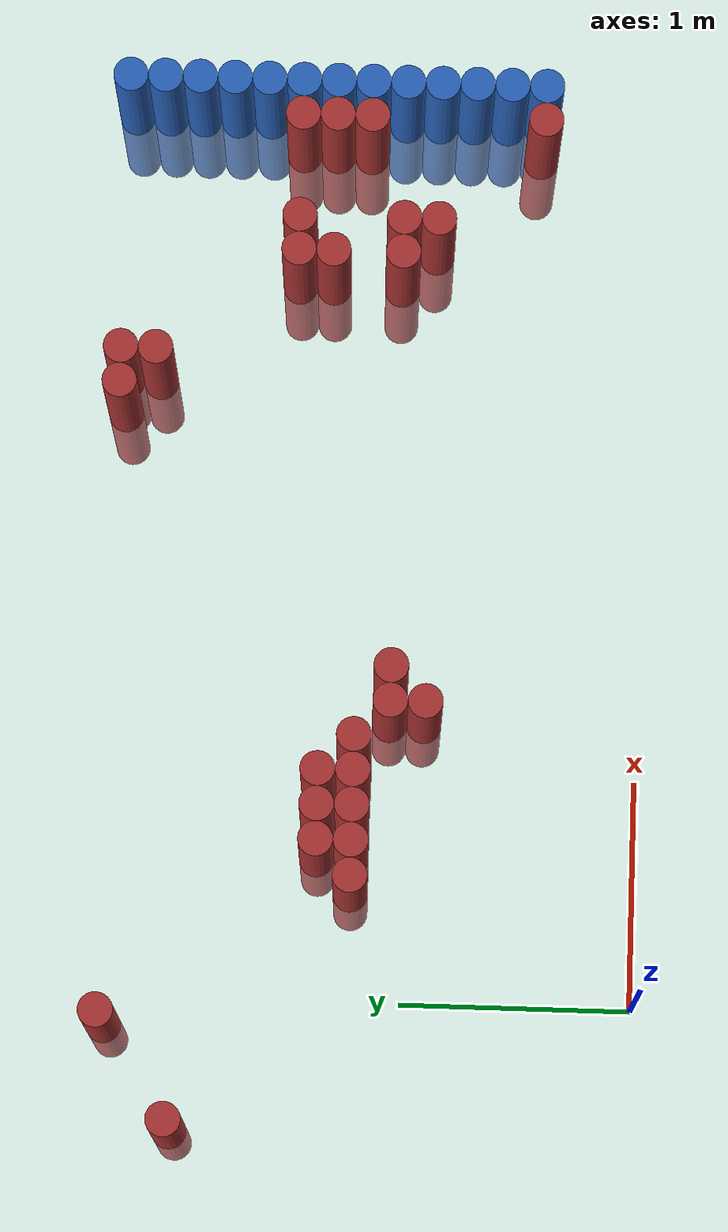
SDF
<sdf version="1.6">
 <world name="default">
  <model name="ground_plane">
   <static>1</static>
   <link name="link">
    <collision name="collision">
     <geometry><plane><normal>0 0 1</normal><size>100 100</size></plane></geometry>
     <surface><friction><ode><mu>100</mu><mu2>50</mu2></ode></friction></surface>
    </collision>
    <visual name="visual">
     <cast_shadows>0</cast_shadows>
     <geometry><plane><normal>0 0 1</normal><size>100 100</size></plane></geometry>
     <material>
      <script><uri>file://media/materials/scripts/gazebo.material</uri><name>Gazebo/Grey</name></script>
     </material>
    </visual>
   </link>
  </model>
  <model name="unit_cylinder_122">
   <static>1</static>
   <pose>3.925000 0.625000 0.000000 0.000000 0.000000 0.000000</pose>
   <link name="link">
    <inertial>
     <mass>1</mass>
     <inertia><ixx>0.145833</ixx><ixy>0</ixy><ixz>0</ixz><iyy>0.145833</iyy><iyz>0</iyz><izz>0.125</izz></inertia>
    </inertial>
    <collision name="collision">
     <geometry><cylinder><radius>0.075000</radius><length>1.5</length></cylinder></geometry>
    </collision>
    <visual name="visual">
     <geometry><cylinder><radius>0.075000</radius><length>1.5</length></cylinder></geometry>
     <material>
      <ambient>0.152000 0.379000 0.720000 1</ambient>
      <diffuse>0.152000 0.379000 0.720000 1</diffuse>
     </material>
     <material>
      <script><name>Gazebo/Grey</name><uri>file://media/materials/scripts/gazebo.material</uri></script>
     </material>
    </visual>
   </link>
  </model>
  <model name="unit_cylinder_124">
   <static>1</static>
   <pose>3.925000 0.775000 0.000000 0.000000 0.000000 0.000000</pose>
   <link name="link">
    <inertial>
     <mass>1</mass>
     <inertia><ixx>0.145833</ixx><ixy>0</ixy><ixz>0</ixz><iyy>0.145833</iyy><iyz>0</iyz><izz>0.125</izz></inertia>
    </inertial>
    <collision name="collision">
     <geometry><cylinder><radius>0.075000</radius><length>1.5</length></cylinder></geometry>
    </collision>
    <visual name="visual">
     <geometry><cylinder><radius>0.075000</radius><length>1.5</length></cylinder></geometry>
     <material>
      <ambient>0.152000 0.379000 0.720000 1</ambient>
      <diffuse>0.152000 0.379000 0.720000 1</diffuse>
     </material>
     <material>
      <script><name>Gazebo/Grey</name><uri>file://media/materials/scripts/gazebo.material</uri></script>
     </material>
    </visual>
   </link>
  </model>
  <model name="unit_cylinder_126">
   <static>1</static>
   <pose>3.925000 0.925000 0.000000 0.000000 0.000000 0.000000</pose>
   <link name="link">
    <inertial>
     <mass>1</mass>
     <inertia><ixx>0.145833</ixx><ixy>0</ixy><ixz>0</ixz><iyy>0.145833</iyy><iyz>0</iyz><izz>0.125</izz></inertia>
    </inertial>
    <collision name="collision">
     <geometry><cylinder><radius>0.075000</radius><length>1.5</length></cylinder></geometry>
    </collision>
    <visual name="visual">
     <geometry><cylinder><radius>0.075000</radius><length>1.5</length></cylinder></geometry>
     <material>
      <ambient>0.152000 0.379000 0.720000 1</ambient>
      <diffuse>0.152000 0.379000 0.720000 1</diffuse>
     </material>
     <material>
      <script><name>Gazebo/Grey</name><uri>file://media/materials/scripts/gazebo.material</uri></script>
     </material>
    </visual>
   </link>
  </model>
  <model name="unit_cylinder_128">
   <static>1</static>
   <pose>3.925000 1.075000 0.000000 0.000000 0.000000 0.000000</pose>
   <link name="link">
    <inertial>
     <mass>1</mass>
     <inertia><ixx>0.145833</ixx><ixy>0</ixy><ixz>0</ixz><iyy>0.145833</iyy><iyz>0</iyz><izz>0.125</izz></inertia>
    </inertial>
    <collision name="collision">
     <geometry><cylinder><radius>0.075000</radius><length>1.5</length></cylinder></geometry>
    </collision>
    <visual name="visual">
     <geometry><cylinder><radius>0.075000</radius><length>1.5</length></cylinder></geometry>
     <material>
      <ambient>0.152000 0.379000 0.720000 1</ambient>
      <diffuse>0.152000 0.379000 0.720000 1</diffuse>
     </material>
     <material>
      <script><name>Gazebo/Grey</name><uri>file://media/materials/scripts/gazebo.material</uri></script>
     </material>
    </visual>
   </link>
  </model>
  <model name="unit_cylinder_130">
   <static>1</static>
   <pose>3.925000 1.225000 0.000000 0.000000 0.000000 0.000000</pose>
   <link name="link">
    <inertial>
     <mass>1</mass>
     <inertia><ixx>0.145833</ixx><ixy>0</ixy><ixz>0</ixz><iyy>0.145833</iyy><iyz>0</iyz><izz>0.125</izz></inertia>
    </inertial>
    <collision name="collision">
     <geometry><cylinder><radius>0.075000</radius><length>1.5</length></cylinder></geometry>
    </collision>
    <visual name="visual">
     <geometry><cylinder><radius>0.075000</radius><length>1.5</length></cylinder></geometry>
     <material>
      <ambient>0.152000 0.379000 0.720000 1</ambient>
      <diffuse>0.152000 0.379000 0.720000 1</diffuse>
     </material>
     <material>
      <script><name>Gazebo/Grey</name><uri>file://media/materials/scripts/gazebo.material</uri></script>
     </material>
    </visual>
   </link>
  </model>
  <model name="unit_cylinder_132">
   <static>1</static>
   <pose>3.925000 1.375000 0.000000 0.000000 0.000000 0.000000</pose>
   <link name="link">
    <inertial>
     <mass>1</mass>
     <inertia><ixx>0.145833</ixx><ixy>0</ixy><ixz>0</ixz><iyy>0.145833</iyy><iyz>0</iyz><izz>0.125</izz></inertia>
    </inertial>
    <collision name="collision">
     <geometry><cylinder><radius>0.075000</radius><length>1.5</length></cylinder></geometry>
    </collision>
    <visual name="visual">
     <geometry><cylinder><radius>0.075000</radius><length>1.5</length></cylinder></geometry>
     <material>
      <ambient>0.152000 0.379000 0.720000 1</ambient>
      <diffuse>0.152000 0.379000 0.720000 1</diffuse>
     </material>
     <material>
      <script><name>Gazebo/Grey</name><uri>file://media/materials/scripts/gazebo.material</uri></script>
     </material>
    </visual>
   </link>
  </model>
  <model name="unit_cylinder_134">
   <static>1</static>
   <pose>3.925000 1.525000 0.000000 0.000000 0.000000 0.000000</pose>
   <link name="link">
    <inertial>
     <mass>1</mass>
     <inertia><ixx>0.145833</ixx><ixy>0</ixy><ixz>0</ixz><iyy>0.145833</iyy><iyz>0</iyz><izz>0.125</izz></inertia>
    </inertial>
    <collision name="collision">
     <geometry><cylinder><radius>0.075000</radius><length>1.5</length></cylinder></geometry>
    </collision>
    <visual name="visual">
     <geometry><cylinder><radius>0.075000</radius><length>1.5</length></cylinder></geometry>
     <material>
      <ambient>0.152000 0.379000 0.720000 1</ambient>
      <diffuse>0.152000 0.379000 0.720000 1</diffuse>
     </material>
     <material>
      <script><name>Gazebo/Grey</name><uri>file://media/materials/scripts/gazebo.material</uri></script>
     </material>
    </visual>
   </link>
  </model>
  <model name="unit_cylinder_136">
   <static>1</static>
   <pose>3.925000 1.675000 0.000000 0.000000 0.000000 0.000000</pose>
   <link name="link">
    <inertial>
     <mass>1</mass>
     <inertia><ixx>0.145833</ixx><ixy>0</ixy><ixz>0</ixz><iyy>0.145833</iyy><iyz>0</iyz><izz>0.125</izz></inertia>
    </inertial>
    <collision name="collision">
     <geometry><cylinder><radius>0.075000</radius><length>1.5</length></cylinder></geometry>
    </collision>
    <visual name="visual">
     <geometry><cylinder><radius>0.075000</radius><length>1.5</length></cylinder></geometry>
     <material>
      <ambient>0.152000 0.379000 0.720000 1</ambient>
      <diffuse>0.152000 0.379000 0.720000 1</diffuse>
     </material>
     <material>
      <script><name>Gazebo/Grey</name><uri>file://media/materials/scripts/gazebo.material</uri></script>
     </material>
    </visual>
   </link>
  </model>
  <model name="unit_cylinder_138">
   <static>1</static>
   <pose>3.925000 1.825000 0.000000 0.000000 0.000000 0.000000</pose>
   <link name="link">
    <inertial>
     <mass>1</mass>
     <inertia><ixx>0.145833</ixx><ixy>0</ixy><ixz>0</ixz><iyy>0.145833</iyy><iyz>0</iyz><izz>0.125</izz></inertia>
    </inertial>
    <collision name="collision">
     <geometry><cylinder><radius>0.075000</radius><length>1.5</length></cylinder></geometry>
    </collision>
    <visual name="visual">
     <geometry><cylinder><radius>0.075000</radius><length>1.5</length></cylinder></geometry>
     <material>
      <ambient>0.152000 0.379000 0.720000 1</ambient>
      <diffuse>0.152000 0.379000 0.720000 1</diffuse>
     </material>
     <material>
      <script><name>Gazebo/Grey</name><uri>file://media/materials/scripts/gazebo.material</uri></script>
     </material>
    </visual>
   </link>
  </model>
  <model name="unit_cylinder_140">
   <static>1</static>
   <pose>3.925000 1.975000 0.000000 0.000000 0.000000 0.000000</pose>
   <link name="link">
    <inertial>
     <mass>1</mass>
     <inertia><ixx>0.145833</ixx><ixy>0</ixy><ixz>0</ixz><iyy>0.145833</iyy><iyz>0</iyz><izz>0.125</izz></inertia>
    </inertial>
    <collision name="collision">
     <geometry><cylinder><radius>0.075000</radius><length>1.5</length></cylinder></geometry>
    </collision>
    <visual name="visual">
     <geometry><cylinder><radius>0.075000</radius><length>1.5</length></cylinder></geometry>
     <material>
      <ambient>0.152000 0.379000 0.720000 1</ambient>
      <diffuse>0.152000 0.379000 0.720000 1</diffuse>
     </material>
     <material>
      <script><name>Gazebo/Grey</name><uri>file://media/materials/scripts/gazebo.material</uri></script>
     </material>
    </visual>
   </link>
  </model>
  <model name="unit_cylinder_142">
   <static>1</static>
   <pose>3.925000 2.125000 0.000000 0.000000 0.000000 0.000000</pose>
   <link name="link">
    <inertial>
     <mass>1</mass>
     <inertia><ixx>0.145833</ixx><ixy>0</ixy><ixz>0</ixz><iyy>0.145833</iyy><iyz>0</iyz><izz>0.125</izz></inertia>
    </inertial>
    <collision name="collision">
     <geometry><cylinder><radius>0.075000</radius><length>1.5</length></cylinder></geometry>
    </collision>
    <visual name="visual">
     <geometry><cylinder><radius>0.075000</radius><length>1.5</length></cylinder></geometry>
     <material>
      <ambient>0.152000 0.379000 0.720000 1</ambient>
      <diffuse>0.152000 0.379000 0.720000 1</diffuse>
     </material>
     <material>
      <script><name>Gazebo/Grey</name><uri>file://media/materials/scripts/gazebo.material</uri></script>
     </material>
    </visual>
   </link>
  </model>
  <model name="unit_cylinder_144">
   <static>1</static>
   <pose>3.925000 2.275000 0.000000 0.000000 0.000000 0.000000</pose>
   <link name="link">
    <inertial>
     <mass>1</mass>
     <inertia><ixx>0.145833</ixx><ixy>0</ixy><ixz>0</ixz><iyy>0.145833</iyy><iyz>0</iyz><izz>0.125</izz></inertia>
    </inertial>
    <collision name="collision">
     <geometry><cylinder><radius>0.075000</radius><length>1.5</length></cylinder></geometry>
    </collision>
    <visual name="visual">
     <geometry><cylinder><radius>0.075000</radius><length>1.5</length></cylinder></geometry>
     <material>
      <ambient>0.152000 0.379000 0.720000 1</ambient>
      <diffuse>0.152000 0.379000 0.720000 1</diffuse>
     </material>
     <material>
      <script><name>Gazebo/Grey</name><uri>file://media/materials/scripts/gazebo.material</uri></script>
     </material>
    </visual>
   </link>
  </model>
  <model name="unit_cylinder_306">
   <static>1</static>
   <pose>-0.575000 1.975000 0.000000 0.000000 0.000000 0.000000</pose>
   <link name="link">
    <inertial>
     <mass>1</mass>
     <inertia><ixx>0.145833</ixx><ixy>0</ixy><ixz>0</ixz><iyy>0.145833</iyy><iyz>0</iyz><izz>0.125</izz></inertia>
    </inertial>
    <collision name="collision">
     <geometry><cylinder><radius>0.075000</radius><length>1.5</length></cylinder></geometry>
    </collision>
    <visual name="visual">
     <geometry><cylinder><radius>0.075000</radius><length>1.5</length></cylinder></geometry>
     <material>
      <ambient>0.648000 0.192000 0.192000 1</ambient>
      <diffuse>0.648000 0.192000 0.192000 1</diffuse>
     </material>
     <material>
      <script><name>Gazebo/Grey</name><uri>file://media/materials/scripts/gazebo.material</uri></script>
     </material>
    </visual>
   </link>
  </model>
  <model name="unit_cylinder_316">
   <static>1</static>
   <pose>-0.125000 2.275000 0.000000 0.000000 0.000000 0.000000</pose>
   <link name="link">
    <inertial>
     <mass>1</mass>
     <inertia><ixx>0.145833</ixx><ixy>0</ixy><ixz>0</ixz><iyy>0.145833</iyy><iyz>0</iyz><izz>0.125</izz></inertia>
    </inertial>
    <collision name="collision">
     <geometry><cylinder><radius>0.075000</radius><length>1.5</length></cylinder></geometry>
    </collision>
    <visual name="visual">
     <geometry><cylinder><radius>0.075000</radius><length>1.5</length></cylinder></geometry>
     <material>
      <ambient>0.648000 0.192000 0.192000 1</ambient>
      <diffuse>0.648000 0.192000 0.192000 1</diffuse>
     </material>
     <material>
      <script><name>Gazebo/Grey</name><uri>file://media/materials/scripts/gazebo.material</uri></script>
     </material>
    </visual>
   </link>
  </model>
  <model name="unit_cylinder_327">
   <static>1</static>
   <pose>0.475000 1.225000 0.000000 0.000000 0.000000 0.000000</pose>
   <link name="link">
    <inertial>
     <mass>1</mass>
     <inertia><ixx>0.145833</ixx><ixy>0</ixy><ixz>0</ixz><iyy>0.145833</iyy><iyz>0</iyz><izz>0.125</izz></inertia>
    </inertial>
    <collision name="collision">
     <geometry><cylinder><radius>0.075000</radius><length>1.5</length></cylinder></geometry>
    </collision>
    <visual name="visual">
     <geometry><cylinder><radius>0.075000</radius><length>1.5</length></cylinder></geometry>
     <material>
      <ambient>0.648000 0.192000 0.192000 1</ambient>
      <diffuse>0.648000 0.192000 0.192000 1</diffuse>
     </material>
     <material>
      <script><name>Gazebo/Grey</name><uri>file://media/materials/scripts/gazebo.material</uri></script>
     </material>
    </visual>
   </link>
  </model>
  <model name="unit_cylinder_329">
   <static>1</static>
   <pose>0.625000 1.225000 0.000000 0.000000 0.000000 0.000000</pose>
   <link name="link">
    <inertial>
     <mass>1</mass>
     <inertia><ixx>0.145833</ixx><ixy>0</ixy><ixz>0</ixz><iyy>0.145833</iyy><iyz>0</iyz><izz>0.125</izz></inertia>
    </inertial>
    <collision name="collision">
     <geometry><cylinder><radius>0.075000</radius><length>1.5</length></cylinder></geometry>
    </collision>
    <visual name="visual">
     <geometry><cylinder><radius>0.075000</radius><length>1.5</length></cylinder></geometry>
     <material>
      <ambient>0.648000 0.192000 0.192000 1</ambient>
      <diffuse>0.648000 0.192000 0.192000 1</diffuse>
     </material>
     <material>
      <script><name>Gazebo/Grey</name><uri>file://media/materials/scripts/gazebo.material</uri></script>
     </material>
    </visual>
   </link>
  </model>
  <model name="unit_cylinder_330">
   <static>1</static>
   <pose>0.625000 1.375000 0.000000 0.000000 0.000000 0.000000</pose>
   <link name="link">
    <inertial>
     <mass>1</mass>
     <inertia><ixx>0.145833</ixx><ixy>0</ixy><ixz>0</ixz><iyy>0.145833</iyy><iyz>0</iyz><izz>0.125</izz></inertia>
    </inertial>
    <collision name="collision">
     <geometry><cylinder><radius>0.075000</radius><length>1.5</length></cylinder></geometry>
    </collision>
    <visual name="visual">
     <geometry><cylinder><radius>0.075000</radius><length>1.5</length></cylinder></geometry>
     <material>
      <ambient>0.648000 0.192000 0.192000 1</ambient>
      <diffuse>0.648000 0.192000 0.192000 1</diffuse>
     </material>
     <material>
      <script><name>Gazebo/Grey</name><uri>file://media/materials/scripts/gazebo.material</uri></script>
     </material>
    </visual>
   </link>
  </model>
  <model name="unit_cylinder_334">
   <static>1</static>
   <pose>0.775000 1.225000 0.000000 0.000000 0.000000 0.000000</pose>
   <link name="link">
    <inertial>
     <mass>1</mass>
     <inertia><ixx>0.145833</ixx><ixy>0</ixy><ixz>0</ixz><iyy>0.145833</iyy><iyz>0</iyz><izz>0.125</izz></inertia>
    </inertial>
    <collision name="collision">
     <geometry><cylinder><radius>0.075000</radius><length>1.5</length></cylinder></geometry>
    </collision>
    <visual name="visual">
     <geometry><cylinder><radius>0.075000</radius><length>1.5</length></cylinder></geometry>
     <material>
      <ambient>0.648000 0.192000 0.192000 1</ambient>
      <diffuse>0.648000 0.192000 0.192000 1</diffuse>
     </material>
     <material>
      <script><name>Gazebo/Grey</name><uri>file://media/materials/scripts/gazebo.material</uri></script>
     </material>
    </visual>
   </link>
  </model>
  <model name="unit_cylinder_335">
   <static>1</static>
   <pose>0.775000 1.375000 0.000000 0.000000 0.000000 0.000000</pose>
   <link name="link">
    <inertial>
     <mass>1</mass>
     <inertia><ixx>0.145833</ixx><ixy>0</ixy><ixz>0</ixz><iyy>0.145833</iyy><iyz>0</iyz><izz>0.125</izz></inertia>
    </inertial>
    <collision name="collision">
     <geometry><cylinder><radius>0.075000</radius><length>1.5</length></cylinder></geometry>
    </collision>
    <visual name="visual">
     <geometry><cylinder><radius>0.075000</radius><length>1.5</length></cylinder></geometry>
     <material>
      <ambient>0.648000 0.192000 0.192000 1</ambient>
      <diffuse>0.648000 0.192000 0.192000 1</diffuse>
     </material>
     <material>
      <script><name>Gazebo/Grey</name><uri>file://media/materials/scripts/gazebo.material</uri></script>
     </material>
    </visual>
   </link>
  </model>
  <model name="unit_cylinder_338">
   <static>1</static>
   <pose>0.925000 1.225000 0.000000 0.000000 0.000000 0.000000</pose>
   <link name="link">
    <inertial>
     <mass>1</mass>
     <inertia><ixx>0.145833</ixx><ixy>0</ixy><ixz>0</ixz><iyy>0.145833</iyy><iyz>0</iyz><izz>0.125</izz></inertia>
    </inertial>
    <collision name="collision">
     <geometry><cylinder><radius>0.075000</radius><length>1.5</length></cylinder></geometry>
    </collision>
    <visual name="visual">
     <geometry><cylinder><radius>0.075000</radius><length>1.5</length></cylinder></geometry>
     <material>
      <ambient>0.648000 0.192000 0.192000 1</ambient>
      <diffuse>0.648000 0.192000 0.192000 1</diffuse>
     </material>
     <material>
      <script><name>Gazebo/Grey</name><uri>file://media/materials/scripts/gazebo.material</uri></script>
     </material>
    </visual>
   </link>
  </model>
  <model name="unit_cylinder_339">
   <static>1</static>
   <pose>0.925000 1.375000 0.000000 0.000000 0.000000 0.000000</pose>
   <link name="link">
    <inertial>
     <mass>1</mass>
     <inertia><ixx>0.145833</ixx><ixy>0</ixy><ixz>0</ixz><iyy>0.145833</iyy><iyz>0</iyz><izz>0.125</izz></inertia>
    </inertial>
    <collision name="collision">
     <geometry><cylinder><radius>0.075000</radius><length>1.5</length></cylinder></geometry>
    </collision>
    <visual name="visual">
     <geometry><cylinder><radius>0.075000</radius><length>1.5</length></cylinder></geometry>
     <material>
      <ambient>0.648000 0.192000 0.192000 1</ambient>
      <diffuse>0.648000 0.192000 0.192000 1</diffuse>
     </material>
     <material>
      <script><name>Gazebo/Grey</name><uri>file://media/materials/scripts/gazebo.material</uri></script>
     </material>
    </visual>
   </link>
  </model>
  <model name="unit_cylinder_341">
   <static>1</static>
   <pose>1.075000 1.225000 0.000000 0.000000 0.000000 0.000000</pose>
   <link name="link">
    <inertial>
     <mass>1</mass>
     <inertia><ixx>0.145833</ixx><ixy>0</ixy><ixz>0</ixz><iyy>0.145833</iyy><iyz>0</iyz><izz>0.125</izz></inertia>
    </inertial>
    <collision name="collision">
     <geometry><cylinder><radius>0.075000</radius><length>1.5</length></cylinder></geometry>
    </collision>
    <visual name="visual">
     <geometry><cylinder><radius>0.075000</radius><length>1.5</length></cylinder></geometry>
     <material>
      <ambient>0.648000 0.192000 0.192000 1</ambient>
      <diffuse>0.648000 0.192000 0.192000 1</diffuse>
     </material>
     <material>
      <script><name>Gazebo/Grey</name><uri>file://media/materials/scripts/gazebo.material</uri></script>
     </material>
    </visual>
   </link>
  </model>
  <model name="unit_cylinder_344">
   <static>1</static>
   <pose>1.225000 0.925000 0.000000 0.000000 0.000000 0.000000</pose>
   <link name="link">
    <inertial>
     <mass>1</mass>
     <inertia><ixx>0.145833</ixx><ixy>0</ixy><ixz>0</ixz><iyy>0.145833</iyy><iyz>0</iyz><izz>0.125</izz></inertia>
    </inertial>
    <collision name="collision">
     <geometry><cylinder><radius>0.075000</radius><length>1.5</length></cylinder></geometry>
    </collision>
    <visual name="visual">
     <geometry><cylinder><radius>0.075000</radius><length>1.5</length></cylinder></geometry>
     <material>
      <ambient>0.648000 0.192000 0.192000 1</ambient>
      <diffuse>0.648000 0.192000 0.192000 1</diffuse>
     </material>
     <material>
      <script><name>Gazebo/Grey</name><uri>file://media/materials/scripts/gazebo.material</uri></script>
     </material>
    </visual>
   </link>
  </model>
  <model name="unit_cylinder_345">
   <static>1</static>
   <pose>1.225000 1.075000 0.000000 0.000000 0.000000 0.000000</pose>
   <link name="link">
    <inertial>
     <mass>1</mass>
     <inertia><ixx>0.145833</ixx><ixy>0</ixy><ixz>0</ixz><iyy>0.145833</iyy><iyz>0</iyz><izz>0.125</izz></inertia>
    </inertial>
    <collision name="collision">
     <geometry><cylinder><radius>0.075000</radius><length>1.5</length></cylinder></geometry>
    </collision>
    <visual name="visual">
     <geometry><cylinder><radius>0.075000</radius><length>1.5</length></cylinder></geometry>
     <material>
      <ambient>0.648000 0.192000 0.192000 1</ambient>
      <diffuse>0.648000 0.192000 0.192000 1</diffuse>
     </material>
     <material>
      <script><name>Gazebo/Grey</name><uri>file://media/materials/scripts/gazebo.material</uri></script>
     </material>
    </visual>
   </link>
  </model>
  <model name="unit_cylinder_346">
   <static>1</static>
   <pose>1.375000 1.075000 0.000000 0.000000 0.000000 0.000000</pose>
   <link name="link">
    <inertial>
     <mass>1</mass>
     <inertia><ixx>0.145833</ixx><ixy>0</ixy><ixz>0</ixz><iyy>0.145833</iyy><iyz>0</iyz><izz>0.125</izz></inertia>
    </inertial>
    <collision name="collision">
     <geometry><cylinder><radius>0.075000</radius><length>1.5</length></cylinder></geometry>
    </collision>
    <visual name="visual">
     <geometry><cylinder><radius>0.075000</radius><length>1.5</length></cylinder></geometry>
     <material>
      <ambient>0.648000 0.192000 0.192000 1</ambient>
      <diffuse>0.648000 0.192000 0.192000 1</diffuse>
     </material>
     <material>
      <script><name>Gazebo/Grey</name><uri>file://media/materials/scripts/gazebo.material</uri></script>
     </material>
    </visual>
   </link>
  </model>
  <model name="unit_cylinder_372">
   <static>1</static>
   <pose>2.575000 2.275000 0.000000 0.000000 0.000000 0.000000</pose>
   <link name="link">
    <inertial>
     <mass>1</mass>
     <inertia><ixx>0.145833</ixx><ixy>0</ixy><ixz>0</ixz><iyy>0.145833</iyy><iyz>0</iyz><izz>0.125</izz></inertia>
    </inertial>
    <collision name="collision">
     <geometry><cylinder><radius>0.075000</radius><length>1.5</length></cylinder></geometry>
    </collision>
    <visual name="visual">
     <geometry><cylinder><radius>0.075000</radius><length>1.5</length></cylinder></geometry>
     <material>
      <ambient>0.648000 0.192000 0.192000 1</ambient>
      <diffuse>0.648000 0.192000 0.192000 1</diffuse>
     </material>
     <material>
      <script><name>Gazebo/Grey</name><uri>file://media/materials/scripts/gazebo.material</uri></script>
     </material>
    </visual>
   </link>
  </model>
  <model name="unit_cylinder_375">
   <static>1</static>
   <pose>2.725000 2.125000 0.000000 0.000000 0.000000 0.000000</pose>
   <link name="link">
    <inertial>
     <mass>1</mass>
     <inertia><ixx>0.145833</ixx><ixy>0</ixy><ixz>0</ixz><iyy>0.145833</iyy><iyz>0</iyz><izz>0.125</izz></inertia>
    </inertial>
    <collision name="collision">
     <geometry><cylinder><radius>0.075000</radius><length>1.5</length></cylinder></geometry>
    </collision>
    <visual name="visual">
     <geometry><cylinder><radius>0.075000</radius><length>1.5</length></cylinder></geometry>
     <material>
      <ambient>0.648000 0.192000 0.192000 1</ambient>
      <diffuse>0.648000 0.192000 0.192000 1</diffuse>
     </material>
     <material>
      <script><name>Gazebo/Grey</name><uri>file://media/materials/scripts/gazebo.material</uri></script>
     </material>
    </visual>
   </link>
  </model>
  <model name="unit_cylinder_376">
   <static>1</static>
   <pose>2.725000 2.275000 0.000000 0.000000 0.000000 0.000000</pose>
   <link name="link">
    <inertial>
     <mass>1</mass>
     <inertia><ixx>0.145833</ixx><ixy>0</ixy><ixz>0</ixz><iyy>0.145833</iyy><iyz>0</iyz><izz>0.125</izz></inertia>
    </inertial>
    <collision name="collision">
     <geometry><cylinder><radius>0.075000</radius><length>1.5</length></cylinder></geometry>
    </collision>
    <visual name="visual">
     <geometry><cylinder><radius>0.075000</radius><length>1.5</length></cylinder></geometry>
     <material>
      <ambient>0.648000 0.192000 0.192000 1</ambient>
      <diffuse>0.648000 0.192000 0.192000 1</diffuse>
     </material>
     <material>
      <script><name>Gazebo/Grey</name><uri>file://media/materials/scripts/gazebo.material</uri></script>
     </material>
    </visual>
   </link>
  </model>
  <model name="unit_cylinder_380">
   <static>1</static>
   <pose>3.175000 1.075000 0.000000 0.000000 0.000000 0.000000</pose>
   <link name="link">
    <inertial>
     <mass>1</mass>
     <inertia><ixx>0.145833</ixx><ixy>0</ixy><ixz>0</ixz><iyy>0.145833</iyy><iyz>0</iyz><izz>0.125</izz></inertia>
    </inertial>
    <collision name="collision">
     <geometry><cylinder><radius>0.075000</radius><length>1.5</length></cylinder></geometry>
    </collision>
    <visual name="visual">
     <geometry><cylinder><radius>0.075000</radius><length>1.5</length></cylinder></geometry>
     <material>
      <ambient>0.648000 0.192000 0.192000 1</ambient>
      <diffuse>0.648000 0.192000 0.192000 1</diffuse>
     </material>
     <material>
      <script><name>Gazebo/Grey</name><uri>file://media/materials/scripts/gazebo.material</uri></script>
     </material>
    </visual>
   </link>
  </model>
  <model name="unit_cylinder_381">
   <static>1</static>
   <pose>3.175000 1.375000 0.000000 0.000000 0.000000 0.000000</pose>
   <link name="link">
    <inertial>
     <mass>1</mass>
     <inertia><ixx>0.145833</ixx><ixy>0</ixy><ixz>0</ixz><iyy>0.145833</iyy><iyz>0</iyz><izz>0.125</izz></inertia>
    </inertial>
    <collision name="collision">
     <geometry><cylinder><radius>0.075000</radius><length>1.5</length></cylinder></geometry>
    </collision>
    <visual name="visual">
     <geometry><cylinder><radius>0.075000</radius><length>1.5</length></cylinder></geometry>
     <material>
      <ambient>0.648000 0.192000 0.192000 1</ambient>
      <diffuse>0.648000 0.192000 0.192000 1</diffuse>
     </material>
     <material>
      <script><name>Gazebo/Grey</name><uri>file://media/materials/scripts/gazebo.material</uri></script>
     </material>
    </visual>
   </link>
  </model>
  <model name="unit_cylinder_382">
   <static>1</static>
   <pose>3.175000 1.525000 0.000000 0.000000 0.000000 0.000000</pose>
   <link name="link">
    <inertial>
     <mass>1</mass>
     <inertia><ixx>0.145833</ixx><ixy>0</ixy><ixz>0</ixz><iyy>0.145833</iyy><iyz>0</iyz><izz>0.125</izz></inertia>
    </inertial>
    <collision name="collision">
     <geometry><cylinder><radius>0.075000</radius><length>1.5</length></cylinder></geometry>
    </collision>
    <visual name="visual">
     <geometry><cylinder><radius>0.075000</radius><length>1.5</length></cylinder></geometry>
     <material>
      <ambient>0.648000 0.192000 0.192000 1</ambient>
      <diffuse>0.648000 0.192000 0.192000 1</diffuse>
     </material>
     <material>
      <script><name>Gazebo/Grey</name><uri>file://media/materials/scripts/gazebo.material</uri></script>
     </material>
    </visual>
   </link>
  </model>
  <model name="unit_cylinder_383">
   <static>1</static>
   <pose>3.325000 0.925000 0.000000 0.000000 0.000000 0.000000</pose>
   <link name="link">
    <inertial>
     <mass>1</mass>
     <inertia><ixx>0.145833</ixx><ixy>0</ixy><ixz>0</ixz><iyy>0.145833</iyy><iyz>0</iyz><izz>0.125</izz></inertia>
    </inertial>
    <collision name="collision">
     <geometry><cylinder><radius>0.075000</radius><length>1.5</length></cylinder></geometry>
    </collision>
    <visual name="visual">
     <geometry><cylinder><radius>0.075000</radius><length>1.5</length></cylinder></geometry>
     <material>
      <ambient>0.648000 0.192000 0.192000 1</ambient>
      <diffuse>0.648000 0.192000 0.192000 1</diffuse>
     </material>
     <material>
      <script><name>Gazebo/Grey</name><uri>file://media/materials/scripts/gazebo.material</uri></script>
     </material>
    </visual>
   </link>
  </model>
  <model name="unit_cylinder_384">
   <static>1</static>
   <pose>3.325000 1.075000 0.000000 0.000000 0.000000 0.000000</pose>
   <link name="link">
    <inertial>
     <mass>1</mass>
     <inertia><ixx>0.145833</ixx><ixy>0</ixy><ixz>0</ixz><iyy>0.145833</iyy><iyz>0</iyz><izz>0.125</izz></inertia>
    </inertial>
    <collision name="collision">
     <geometry><cylinder><radius>0.075000</radius><length>1.5</length></cylinder></geometry>
    </collision>
    <visual name="visual">
     <geometry><cylinder><radius>0.075000</radius><length>1.5</length></cylinder></geometry>
     <material>
      <ambient>0.648000 0.192000 0.192000 1</ambient>
      <diffuse>0.648000 0.192000 0.192000 1</diffuse>
     </material>
     <material>
      <script><name>Gazebo/Grey</name><uri>file://media/materials/scripts/gazebo.material</uri></script>
     </material>
    </visual>
   </link>
  </model>
  <model name="unit_cylinder_385">
   <static>1</static>
   <pose>3.325000 1.525000 0.000000 0.000000 0.000000 0.000000</pose>
   <link name="link">
    <inertial>
     <mass>1</mass>
     <inertia><ixx>0.145833</ixx><ixy>0</ixy><ixz>0</ixz><iyy>0.145833</iyy><iyz>0</iyz><izz>0.125</izz></inertia>
    </inertial>
    <collision name="collision">
     <geometry><cylinder><radius>0.075000</radius><length>1.5</length></cylinder></geometry>
    </collision>
    <visual name="visual">
     <geometry><cylinder><radius>0.075000</radius><length>1.5</length></cylinder></geometry>
     <material>
      <ambient>0.648000 0.192000 0.192000 1</ambient>
      <diffuse>0.648000 0.192000 0.192000 1</diffuse>
     </material>
     <material>
      <script><name>Gazebo/Grey</name><uri>file://media/materials/scripts/gazebo.material</uri></script>
     </material>
    </visual>
   </link>
  </model>
  <model name="unit_cylinder_398">
   <static>1</static>
   <pose>3.775000 0.475000 0.000000 0.000000 0.000000 0.000000</pose>
   <link name="link">
    <inertial>
     <mass>1</mass>
     <inertia><ixx>0.145833</ixx><ixy>0</ixy><ixz>0</ixz><iyy>0.145833</iyy><iyz>0</iyz><izz>0.125</izz></inertia>
    </inertial>
    <collision name="collision">
     <geometry><cylinder><radius>0.075000</radius><length>1.5</length></cylinder></geometry>
    </collision>
    <visual name="visual">
     <geometry><cylinder><radius>0.075000</radius><length>1.5</length></cylinder></geometry>
     <material>
      <ambient>0.648000 0.192000 0.192000 1</ambient>
      <diffuse>0.648000 0.192000 0.192000 1</diffuse>
     </material>
     <material>
      <script><name>Gazebo/Grey</name><uri>file://media/materials/scripts/gazebo.material</uri></script>
     </material>
    </visual>
   </link>
  </model>
  <model name="unit_cylinder_399">
   <static>1</static>
   <pose>3.775000 1.225000 0.000000 0.000000 0.000000 0.000000</pose>
   <link name="link">
    <inertial>
     <mass>1</mass>
     <inertia><ixx>0.145833</ixx><ixy>0</ixy><ixz>0</ixz><iyy>0.145833</iyy><iyz>0</iyz><izz>0.125</izz></inertia>
    </inertial>
    <collision name="collision">
     <geometry><cylinder><radius>0.075000</radius><length>1.5</length></cylinder></geometry>
    </collision>
    <visual name="visual">
     <geometry><cylinder><radius>0.075000</radius><length>1.5</length></cylinder></geometry>
     <material>
      <ambient>0.648000 0.192000 0.192000 1</ambient>
      <diffuse>0.648000 0.192000 0.192000 1</diffuse>
     </material>
     <material>
      <script><name>Gazebo/Grey</name><uri>file://media/materials/scripts/gazebo.material</uri></script>
     </material>
    </visual>
   </link>
  </model>
  <model name="unit_cylinder_400">
   <static>1</static>
   <pose>3.775000 1.375000 0.000000 0.000000 0.000000 0.000000</pose>
   <link name="link">
    <inertial>
     <mass>1</mass>
     <inertia><ixx>0.145833</ixx><ixy>0</ixy><ixz>0</ixz><iyy>0.145833</iyy><iyz>0</iyz><izz>0.125</izz></inertia>
    </inertial>
    <collision name="collision">
     <geometry><cylinder><radius>0.075000</radius><length>1.5</length></cylinder></geometry>
    </collision>
    <visual name="visual">
     <geometry><cylinder><radius>0.075000</radius><length>1.5</length></cylinder></geometry>
     <material>
      <ambient>0.648000 0.192000 0.192000 1</ambient>
      <diffuse>0.648000 0.192000 0.192000 1</diffuse>
     </material>
     <material>
      <script><name>Gazebo/Grey</name><uri>file://media/materials/scripts/gazebo.material</uri></script>
     </material>
    </visual>
   </link>
  </model>
  <model name="unit_cylinder_401">
   <static>1</static>
   <pose>3.775000 1.525000 0.000000 0.000000 0.000000 0.000000</pose>
   <link name="link">
    <inertial>
     <mass>1</mass>
     <inertia><ixx>0.145833</ixx><ixy>0</ixy><ixz>0</ixz><iyy>0.145833</iyy><iyz>0</iyz><izz>0.125</izz></inertia>
    </inertial>
    <collision name="collision">
     <geometry><cylinder><radius>0.075000</radius><length>1.5</length></cylinder></geometry>
    </collision>
    <visual name="visual">
     <geometry><cylinder><radius>0.075000</radius><length>1.5</length></cylinder></geometry>
     <material>
      <ambient>0.648000 0.192000 0.192000 1</ambient>
      <diffuse>0.648000 0.192000 0.192000 1</diffuse>
     </material>
     <material>
      <script><name>Gazebo/Grey</name><uri>file://media/materials/scripts/gazebo.material</uri></script>
     </material>
    </visual>
   </link>
  </model>
  <model name="unit_cylinder_427">
   <static>1</static>
   <pose>3.925000 0.475000 0.000000 0.000000 0.000000 0.000000</pose>
   <link name="link">
    <inertial>
     <mass>1</mass>
     <inertia><ixx>0.145833</ixx><ixy>0</ixy><ixz>0</ixz><iyy>0.145833</iyy><iyz>0</iyz><izz>0.125</izz></inertia>
    </inertial>
    <collision name="collision">
     <geometry><cylinder><radius>0.075000</radius><length>1.5</length></cylinder></geometry>
    </collision>
    <visual name="visual">
     <geometry><cylinder><radius>0.075000</radius><length>1.5</length></cylinder></geometry>
     <material>
      <ambient>0.152000 0.379000 0.720000 1</ambient>
      <diffuse>0.152000 0.379000 0.720000 1</diffuse>
     </material>
     <material>
      <script><name>Gazebo/Grey</name><uri>file://media/materials/scripts/gazebo.material</uri></script>
     </material>
    </visual>
   </link>
  </model>
  <model name="unit_cylinder_428">
   <static>1</static>
   <pose>3.925000 0.625000 0.000000 0.000000 0.000000 0.000000</pose>
   <link name="link">
    <inertial>
     <mass>1</mass>
     <inertia><ixx>0.145833</ixx><ixy>0</ixy><ixz>0</ixz><iyy>0.145833</iyy><iyz>0</iyz><izz>0.125</izz></inertia>
    </inertial>
    <collision name="collision">
     <geometry><cylinder><radius>0.075000</radius><length>1.5</length></cylinder></geometry>
    </collision>
    <visual name="visual">
     <geometry><cylinder><radius>0.075000</radius><length>1.5</length></cylinder></geometry>
     <material>
      <ambient>0.152000 0.379000 0.720000 1</ambient>
      <diffuse>0.152000 0.379000 0.720000 1</diffuse>
     </material>
     <material>
      <script><name>Gazebo/Grey</name><uri>file://media/materials/scripts/gazebo.material</uri></script>
     </material>
    </visual>
   </link>
  </model>
  <model name="unit_cylinder_429">
   <static>1</static>
   <pose>3.925000 0.775000 0.000000 0.000000 0.000000 0.000000</pose>
   <link name="link">
    <inertial>
     <mass>1</mass>
     <inertia><ixx>0.145833</ixx><ixy>0</ixy><ixz>0</ixz><iyy>0.145833</iyy><iyz>0</iyz><izz>0.125</izz></inertia>
    </inertial>
    <collision name="collision">
     <geometry><cylinder><radius>0.075000</radius><length>1.5</length></cylinder></geometry>
    </collision>
    <visual name="visual">
     <geometry><cylinder><radius>0.075000</radius><length>1.5</length></cylinder></geometry>
     <material>
      <ambient>0.152000 0.379000 0.720000 1</ambient>
      <diffuse>0.152000 0.379000 0.720000 1</diffuse>
     </material>
     <material>
      <script><name>Gazebo/Grey</name><uri>file://media/materials/scripts/gazebo.material</uri></script>
     </material>
    </visual>
   </link>
  </model>
  <model name="unit_cylinder_430">
   <static>1</static>
   <pose>3.925000 0.925000 0.000000 0.000000 0.000000 0.000000</pose>
   <link name="link">
    <inertial>
     <mass>1</mass>
     <inertia><ixx>0.145833</ixx><ixy>0</ixy><ixz>0</ixz><iyy>0.145833</iyy><iyz>0</iyz><izz>0.125</izz></inertia>
    </inertial>
    <collision name="collision">
     <geometry><cylinder><radius>0.075000</radius><length>1.5</length></cylinder></geometry>
    </collision>
    <visual name="visual">
     <geometry><cylinder><radius>0.075000</radius><length>1.5</length></cylinder></geometry>
     <material>
      <ambient>0.152000 0.379000 0.720000 1</ambient>
      <diffuse>0.152000 0.379000 0.720000 1</diffuse>
     </material>
     <material>
      <script><name>Gazebo/Grey</name><uri>file://media/materials/scripts/gazebo.material</uri></script>
     </material>
    </visual>
   </link>
  </model>
  <model name="unit_cylinder_431">
   <static>1</static>
   <pose>3.925000 1.075000 0.000000 0.000000 0.000000 0.000000</pose>
   <link name="link">
    <inertial>
     <mass>1</mass>
     <inertia><ixx>0.145833</ixx><ixy>0</ixy><ixz>0</ixz><iyy>0.145833</iyy><iyz>0</iyz><izz>0.125</izz></inertia>
    </inertial>
    <collision name="collision">
     <geometry><cylinder><radius>0.075000</radius><length>1.5</length></cylinder></geometry>
    </collision>
    <visual name="visual">
     <geometry><cylinder><radius>0.075000</radius><length>1.5</length></cylinder></geometry>
     <material>
      <ambient>0.152000 0.379000 0.720000 1</ambient>
      <diffuse>0.152000 0.379000 0.720000 1</diffuse>
     </material>
     <material>
      <script><name>Gazebo/Grey</name><uri>file://media/materials/scripts/gazebo.material</uri></script>
     </material>
    </visual>
   </link>
  </model>
  <model name="unit_cylinder_432">
   <static>1</static>
   <pose>3.925000 1.225000 0.000000 0.000000 0.000000 0.000000</pose>
   <link name="link">
    <inertial>
     <mass>1</mass>
     <inertia><ixx>0.145833</ixx><ixy>0</ixy><ixz>0</ixz><iyy>0.145833</iyy><iyz>0</iyz><izz>0.125</izz></inertia>
    </inertial>
    <collision name="collision">
     <geometry><cylinder><radius>0.075000</radius><length>1.5</length></cylinder></geometry>
    </collision>
    <visual name="visual">
     <geometry><cylinder><radius>0.075000</radius><length>1.5</length></cylinder></geometry>
     <material>
      <ambient>0.152000 0.379000 0.720000 1</ambient>
      <diffuse>0.152000 0.379000 0.720000 1</diffuse>
     </material>
     <material>
      <script><name>Gazebo/Grey</name><uri>file://media/materials/scripts/gazebo.material</uri></script>
     </material>
    </visual>
   </link>
  </model>
  <model name="unit_cylinder_433">
   <static>1</static>
   <pose>3.925000 1.375000 0.000000 0.000000 0.000000 0.000000</pose>
   <link name="link">
    <inertial>
     <mass>1</mass>
     <inertia><ixx>0.145833</ixx><ixy>0</ixy><ixz>0</ixz><iyy>0.145833</iyy><iyz>0</iyz><izz>0.125</izz></inertia>
    </inertial>
    <collision name="collision">
     <geometry><cylinder><radius>0.075000</radius><length>1.5</length></cylinder></geometry>
    </collision>
    <visual name="visual">
     <geometry><cylinder><radius>0.075000</radius><length>1.5</length></cylinder></geometry>
     <material>
      <ambient>0.152000 0.379000 0.720000 1</ambient>
      <diffuse>0.152000 0.379000 0.720000 1</diffuse>
     </material>
     <material>
      <script><name>Gazebo/Grey</name><uri>file://media/materials/scripts/gazebo.material</uri></script>
     </material>
    </visual>
   </link>
  </model>
  <model name="unit_cylinder_434">
   <static>1</static>
   <pose>3.925000 1.525000 0.000000 0.000000 0.000000 0.000000</pose>
   <link name="link">
    <inertial>
     <mass>1</mass>
     <inertia><ixx>0.145833</ixx><ixy>0</ixy><ixz>0</ixz><iyy>0.145833</iyy><iyz>0</iyz><izz>0.125</izz></inertia>
    </inertial>
    <collision name="collision">
     <geometry><cylinder><radius>0.075000</radius><length>1.5</length></cylinder></geometry>
    </collision>
    <visual name="visual">
     <geometry><cylinder><radius>0.075000</radius><length>1.5</length></cylinder></geometry>
     <material>
      <ambient>0.152000 0.379000 0.720000 1</ambient>
      <diffuse>0.152000 0.379000 0.720000 1</diffuse>
     </material>
     <material>
      <script><name>Gazebo/Grey</name><uri>file://media/materials/scripts/gazebo.material</uri></script>
     </material>
    </visual>
   </link>
  </model>
  <model name="unit_cylinder_435">
   <static>1</static>
   <pose>3.925000 1.675000 0.000000 0.000000 0.000000 0.000000</pose>
   <link name="link">
    <inertial>
     <mass>1</mass>
     <inertia><ixx>0.145833</ixx><ixy>0</ixy><ixz>0</ixz><iyy>0.145833</iyy><iyz>0</iyz><izz>0.125</izz></inertia>
    </inertial>
    <collision name="collision">
     <geometry><cylinder><radius>0.075000</radius><length>1.5</length></cylinder></geometry>
    </collision>
    <visual name="visual">
     <geometry><cylinder><radius>0.075000</radius><length>1.5</length></cylinder></geometry>
     <material>
      <ambient>0.152000 0.379000 0.720000 1</ambient>
      <diffuse>0.152000 0.379000 0.720000 1</diffuse>
     </material>
     <material>
      <script><name>Gazebo/Grey</name><uri>file://media/materials/scripts/gazebo.material</uri></script>
     </material>
    </visual>
   </link>
  </model>
  <model name="unit_cylinder_436">
   <static>1</static>
   <pose>3.925000 1.825000 0.000000 0.000000 0.000000 0.000000</pose>
   <link name="link">
    <inertial>
     <mass>1</mass>
     <inertia><ixx>0.145833</ixx><ixy>0</ixy><ixz>0</ixz><iyy>0.145833</iyy><iyz>0</iyz><izz>0.125</izz></inertia>
    </inertial>
    <collision name="collision">
     <geometry><cylinder><radius>0.075000</radius><length>1.5</length></cylinder></geometry>
    </collision>
    <visual name="visual">
     <geometry><cylinder><radius>0.075000</radius><length>1.5</length></cylinder></geometry>
     <material>
      <ambient>0.152000 0.379000 0.720000 1</ambient>
      <diffuse>0.152000 0.379000 0.720000 1</diffuse>
     </material>
     <material>
      <script><name>Gazebo/Grey</name><uri>file://media/materials/scripts/gazebo.material</uri></script>
     </material>
    </visual>
   </link>
  </model>
  <model name="unit_cylinder_437">
   <static>1</static>
   <pose>3.925000 1.975000 0.000000 0.000000 0.000000 0.000000</pose>
   <link name="link">
    <inertial>
     <mass>1</mass>
     <inertia><ixx>0.145833</ixx><ixy>0</ixy><ixz>0</ixz><iyy>0.145833</iyy><iyz>0</iyz><izz>0.125</izz></inertia>
    </inertial>
    <collision name="collision">
     <geometry><cylinder><radius>0.075000</radius><length>1.5</length></cylinder></geometry>
    </collision>
    <visual name="visual">
     <geometry><cylinder><radius>0.075000</radius><length>1.5</length></cylinder></geometry>
     <material>
      <ambient>0.152000 0.379000 0.720000 1</ambient>
      <diffuse>0.152000 0.379000 0.720000 1</diffuse>
     </material>
     <material>
      <script><name>Gazebo/Grey</name><uri>file://media/materials/scripts/gazebo.material</uri></script>
     </material>
    </visual>
   </link>
  </model>
  <model name="unit_cylinder_438">
   <static>1</static>
   <pose>3.925000 2.125000 0.000000 0.000000 0.000000 0.000000</pose>
   <link name="link">
    <inertial>
     <mass>1</mass>
     <inertia><ixx>0.145833</ixx><ixy>0</ixy><ixz>0</ixz><iyy>0.145833</iyy><iyz>0</iyz><izz>0.125</izz></inertia>
    </inertial>
    <collision name="collision">
     <geometry><cylinder><radius>0.075000</radius><length>1.5</length></cylinder></geometry>
    </collision>
    <visual name="visual">
     <geometry><cylinder><radius>0.075000</radius><length>1.5</length></cylinder></geometry>
     <material>
      <ambient>0.152000 0.379000 0.720000 1</ambient>
      <diffuse>0.152000 0.379000 0.720000 1</diffuse>
     </material>
     <material>
      <script><name>Gazebo/Grey</name><uri>file://media/materials/scripts/gazebo.material</uri></script>
     </material>
    </visual>
   </link>
  </model>
  <model name="unit_cylinder_439">
   <static>1</static>
   <pose>3.925000 2.275000 0.000000 0.000000 0.000000 0.000000</pose>
   <link name="link">
    <inertial>
     <mass>1</mass>
     <inertia><ixx>0.145833</ixx><ixy>0</ixy><ixz>0</ixz><iyy>0.145833</iyy><iyz>0</iyz><izz>0.125</izz></inertia>
    </inertial>
    <collision name="collision">
     <geometry><cylinder><radius>0.075000</radius><length>1.5</length></cylinder></geometry>
    </collision>
    <visual name="visual">
     <geometry><cylinder><radius>0.075000</radius><length>1.5</length></cylinder></geometry>
     <material>
      <ambient>0.152000 0.379000 0.720000 1</ambient>
      <diffuse>0.152000 0.379000 0.720000 1</diffuse>
     </material>
     <material>
      <script><name>Gazebo/Grey</name><uri>file://media/materials/scripts/gazebo.material</uri></script>
     </material>
    </visual>
   </link>
  </model>
 </world>
</sdf>
